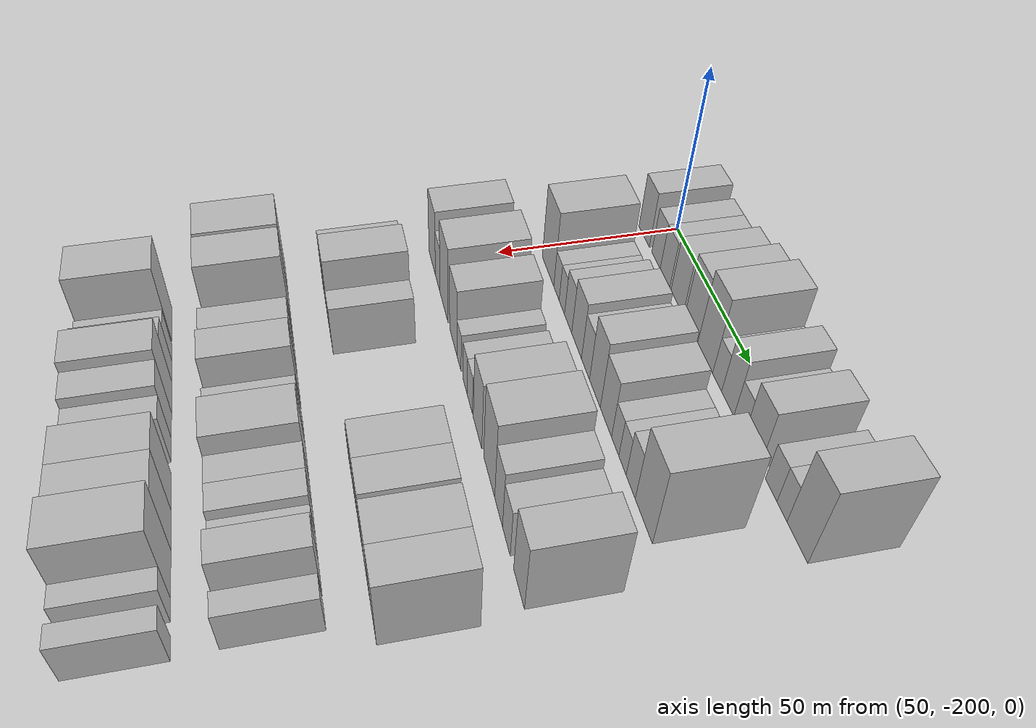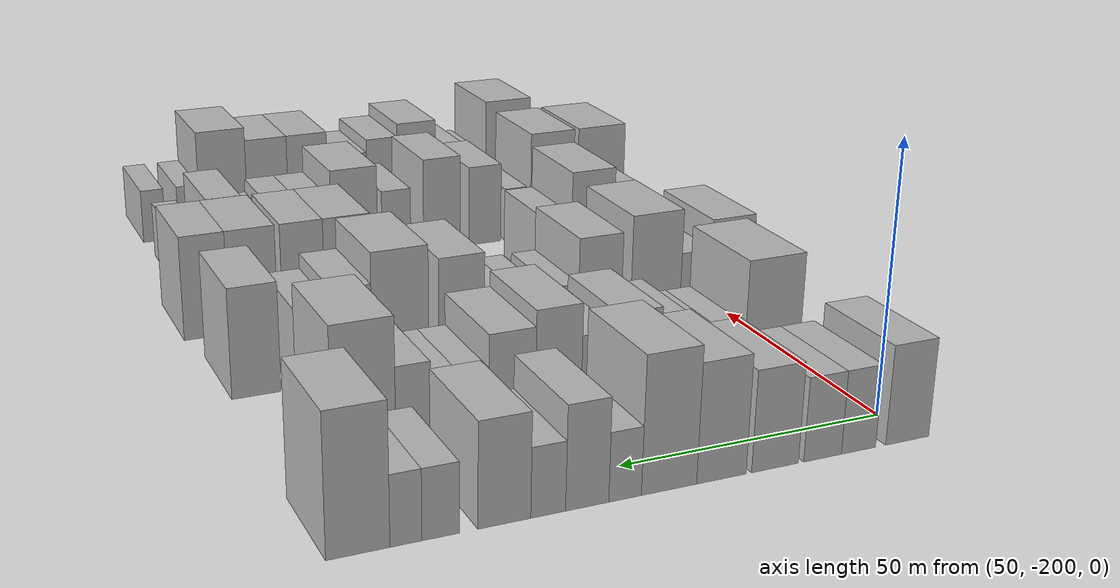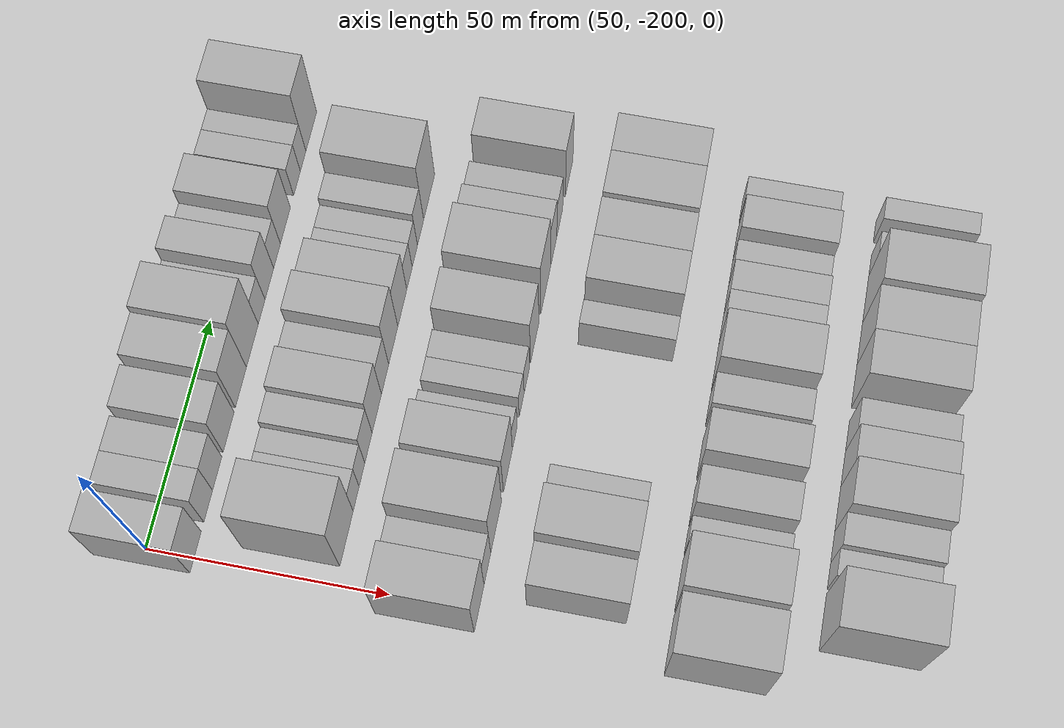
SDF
<sdf version="1.6">
 <world name="default">
  <model name="building_36">
   <static>1</static>
   <pose>50.0000 -198.7838 0 0.000000 0.000000 0.000000</pose>
   <link name="link">
    <pose>0 0 9.00 0 0 0</pose>
    <collision name="collision"><geometry><box><size>20.0000 8.6646 18.0000</size></box></geometry></collision>
    <visual name="visual">
     <cast_shadows>0</cast_shadows>
     <geometry><box><size>20.0000 8.6646 18.0000</size></box></geometry>
     <material>
      <script>
       <uri>model://HANNAS_wall/materials/scripts</uri>
       <uri>model://HANNAS_wall/materials/textures</uri>
       <name>vrc/HANNAS_wall</name>
      </script>
     </material>
    </visual>
   </link>
  </model>
  <model name="building_37">
   <static>1</static>
   <pose>50.0000 -189.0861 0 0.000000 0.000000 0.000000</pose>
   <link name="link">
    <pose>0 0 7.50 0 0 0</pose>
    <collision name="collision"><geometry><box><size>20.0000 6.7308 15.0000</size></box></geometry></collision>
    <visual name="visual">
     <cast_shadows>0</cast_shadows>
     <geometry><box><size>20.0000 6.7308 15.0000</size></box></geometry>
     <material>
      <script>
       <uri>model://HANNAS_wall/materials/scripts</uri>
       <uri>model://HANNAS_wall/materials/textures</uri>
       <name>vrc/HANNAS_wall</name>
      </script>
     </material>
    </visual>
   </link>
  </model>
  <model name="building_38">
   <static>1</static>
   <pose>50.0000 -182.0911 0 0.000000 0.000000 0.000000</pose>
   <link name="link">
    <pose>0 0 7.50 0 0 0</pose>
    <collision name="collision"><geometry><box><size>20.0000 7.2593 15.0000</size></box></geometry></collision>
    <visual name="visual">
     <cast_shadows>0</cast_shadows>
     <geometry><box><size>20.0000 7.2593 15.0000</size></box></geometry>
     <material>
      <script>
       <uri>model://HANNAS_wall/materials/scripts</uri>
       <uri>model://HANNAS_wall/materials/textures</uri>
       <name>vrc/HANNAS_wall</name>
      </script>
     </material>
    </visual>
   </link>
  </model>
  <model name="building_39">
   <static>1</static>
   <pose>50.0000 -173.0492 0 0.000000 0.000000 0.000000</pose>
   <link name="link">
    <pose>0 0 9.00 0 0 0</pose>
    <collision name="collision"><geometry><box><size>20.0000 8.8244 18.0000</size></box></geometry></collision>
    <visual name="visual">
     <cast_shadows>0</cast_shadows>
     <geometry><box><size>20.0000 8.8244 18.0000</size></box></geometry>
     <material>
      <script>
       <uri>model://HANNAS_wall/materials/scripts</uri>
       <uri>model://HANNAS_wall/materials/textures</uri>
       <name>vrc/HANNAS_wall</name>
      </script>
     </material>
    </visual>
   </link>
  </model>
  <model name="building_40">
   <static>1</static>
   <pose>50.0000 -163.0983 0 0.000000 0.000000 0.000000</pose>
   <link name="link">
    <pose>0 0 10.50 0 0 0</pose>
    <collision name="collision"><geometry><box><size>20.0000 9.0775 21.0000</size></box></geometry></collision>
    <visual name="visual">
     <cast_shadows>0</cast_shadows>
     <geometry><box><size>20.0000 9.0775 21.0000</size></box></geometry>
     <material>
      <script>
       <uri>model://HANNAS_wall/materials/scripts</uri>
       <uri>model://HANNAS_wall/materials/textures</uri>
       <name>vrc/HANNAS_wall</name>
      </script>
     </material>
    </visual>
   </link>
  </model>
  <model name="building_41">
   <static>1</static>
   <pose>50.0000 -153.6239 0 0.000000 0.000000 0.000000</pose>
   <link name="link">
    <pose>0 0 12.00 0 0 0</pose>
    <collision name="collision"><geometry><box><size>20.0000 9.8713 24.0000</size></box></geometry></collision>
    <visual name="visual">
     <cast_shadows>0</cast_shadows>
     <geometry><box><size>20.0000 9.8713 24.0000</size></box></geometry>
     <material>
      <script>
       <uri>model://HANNAS_wall/materials/scripts</uri>
       <uri>model://HANNAS_wall/materials/textures</uri>
       <name>vrc/HANNAS_wall</name>
      </script>
     </material>
    </visual>
   </link>
  </model>
  <model name="building_42">
   <static>1</static>
   <pose>50.0000 -145.8374 0 0.000000 0.000000 0.000000</pose>
   <link name="link">
    <pose>0 0 6.00 0 0 0</pose>
    <collision name="collision"><geometry><box><size>20.0000 5.7016 12.0000</size></box></geometry></collision>
    <visual name="visual">
     <cast_shadows>0</cast_shadows>
     <geometry><box><size>20.0000 5.7016 12.0000</size></box></geometry>
     <material>
      <script>
       <uri>model://HANNAS_wall/materials/scripts</uri>
       <uri>model://HANNAS_wall/materials/textures</uri>
       <name>vrc/HANNAS_wall</name>
      </script>
     </material>
    </visual>
   </link>
  </model>
  <model name="building_43">
   <static>1</static>
   <pose>50.0000 -139.2914 0 0.000000 0.000000 0.000000</pose>
   <link name="link">
    <pose>0 0 9.00 0 0 0</pose>
    <collision name="collision"><geometry><box><size>20.0000 7.3903 18.0000</size></box></geometry></collision>
    <visual name="visual">
     <cast_shadows>0</cast_shadows>
     <geometry><box><size>20.0000 7.3903 18.0000</size></box></geometry>
     <material>
      <script>
       <uri>model://HANNAS_wall/materials/scripts</uri>
       <uri>model://HANNAS_wall/materials/textures</uri>
       <name>vrc/HANNAS_wall</name>
      </script>
     </material>
    </visual>
   </link>
  </model>
  <model name="building_44">
   <static>1</static>
   <pose>50.0000 -132.6653 0 0.000000 0.000000 0.000000</pose>
   <link name="link">
    <pose>0 0 6.00 0 0 0</pose>
    <collision name="collision"><geometry><box><size>20.0000 5.8619 12.0000</size></box></geometry></collision>
    <visual name="visual">
     <cast_shadows>0</cast_shadows>
     <geometry><box><size>20.0000 5.8619 12.0000</size></box></geometry>
     <material>
      <script>
       <uri>model://HANNAS_wall/materials/scripts</uri>
       <uri>model://HANNAS_wall/materials/textures</uri>
       <name>vrc/HANNAS_wall</name>
      </script>
     </material>
    </visual>
   </link>
  </model>
  <model name="building_45">
   <static>1</static>
   <pose>50.0000 -125.3735 0 0.000000 0.000000 0.000000</pose>
   <link name="link">
    <pose>0 0 9.00 0 0 0</pose>
    <collision name="collision"><geometry><box><size>20.0000 8.7218 18.0000</size></box></geometry></collision>
    <visual name="visual">
     <cast_shadows>0</cast_shadows>
     <geometry><box><size>20.0000 8.7218 18.0000</size></box></geometry>
     <material>
      <script>
       <uri>model://HANNAS_wall/materials/scripts</uri>
       <uri>model://HANNAS_wall/materials/textures</uri>
       <name>vrc/HANNAS_wall</name>
      </script>
     </material>
    </visual>
   </link>
  </model>
  <model name="building_46">
   <static>1</static>
   <pose>50.0000 -115.0211 0 0.000000 0.000000 0.000000</pose>
   <link name="link">
    <pose>0 0 6.00 0 0 0</pose>
    <collision name="collision"><geometry><box><size>20.0000 5.9830 12.0000</size></box></geometry></collision>
    <visual name="visual">
     <cast_shadows>0</cast_shadows>
     <geometry><box><size>20.0000 5.9830 12.0000</size></box></geometry>
     <material>
      <script>
       <uri>model://HANNAS_wall/materials/scripts</uri>
       <uri>model://HANNAS_wall/materials/textures</uri>
       <name>vrc/HANNAS_wall</name>
      </script>
     </material>
    </visual>
   </link>
  </model>
  <model name="building_47">
   <static>1</static>
   <pose>50.0000 -109.5095 0 0.000000 0.000000 0.000000</pose>
   <link name="link">
    <pose>0 0 6.00 0 0 0</pose>
    <collision name="collision"><geometry><box><size>20.0000 5.0402 12.0000</size></box></geometry></collision>
    <visual name="visual">
     <cast_shadows>0</cast_shadows>
     <geometry><box><size>20.0000 5.0402 12.0000</size></box></geometry>
     <material>
      <script>
       <uri>model://HANNAS_wall/materials/scripts</uri>
       <uri>model://HANNAS_wall/materials/textures</uri>
       <name>vrc/HANNAS_wall</name>
      </script>
     </material>
    </visual>
   </link>
  </model>
  <model name="building_48">
   <static>1</static>
   <pose>50.0000 -102.0302 0 0.000000 0.000000 0.000000</pose>
   <link name="link">
    <pose>0 0 12.00 0 0 0</pose>
    <collision name="collision"><geometry><box><size>20.0000 9.9185 24.0000</size></box></geometry></collision>
    <visual name="visual">
     <cast_shadows>0</cast_shadows>
     <geometry><box><size>20.0000 9.9185 24.0000</size></box></geometry>
     <material>
      <script>
       <uri>model://HANNAS_wall/materials/scripts</uri>
       <uri>model://HANNAS_wall/materials/textures</uri>
       <name>vrc/HANNAS_wall</name>
      </script>
     </material>
    </visual>
   </link>
  </model>
  <model name="building_146">
   <static>1</static>
   <pose>79.0000 -190.3811 0 0.000000 0.000000 0.000000</pose>
   <link name="link">
    <pose>0 0 12.00 0 0 0</pose>
    <collision name="collision"><geometry><box><size>20.0000 11.5935 24.0000</size></box></geometry></collision>
    <visual name="visual">
     <cast_shadows>0</cast_shadows>
     <geometry><box><size>20.0000 11.5935 24.0000</size></box></geometry>
     <material>
      <script>
       <uri>model://HANNAS_wall/materials/scripts</uri>
       <uri>model://HANNAS_wall/materials/textures</uri>
       <name>vrc/HANNAS_wall</name>
      </script>
     </material>
    </visual>
   </link>
  </model>
  <model name="building_147">
   <static>1</static>
   <pose>79.0000 -181.9676 0 0.000000 0.000000 0.000000</pose>
   <link name="link">
    <pose>0 0 6.00 0 0 0</pose>
    <collision name="collision"><geometry><box><size>20.0000 5.2334 12.0000</size></box></geometry></collision>
    <visual name="visual">
     <cast_shadows>0</cast_shadows>
     <geometry><box><size>20.0000 5.2334 12.0000</size></box></geometry>
     <material>
      <script>
       <uri>model://HANNAS_wall/materials/scripts</uri>
       <uri>model://HANNAS_wall/materials/textures</uri>
       <name>vrc/HANNAS_wall</name>
      </script>
     </material>
    </visual>
   </link>
  </model>
  <model name="building_148">
   <static>1</static>
   <pose>79.0000 -176.8046 0 0.000000 0.000000 0.000000</pose>
   <link name="link">
    <pose>0 0 6.00 0 0 0</pose>
    <collision name="collision"><geometry><box><size>20.0000 5.0927 12.0000</size></box></geometry></collision>
    <visual name="visual">
     <cast_shadows>0</cast_shadows>
     <geometry><box><size>20.0000 5.0927 12.0000</size></box></geometry>
     <material>
      <script>
       <uri>model://HANNAS_wall/materials/scripts</uri>
       <uri>model://HANNAS_wall/materials/textures</uri>
       <name>vrc/HANNAS_wall</name>
      </script>
     </material>
    </visual>
   </link>
  </model>
  <model name="building_149">
   <static>1</static>
   <pose>79.0000 -170.9656 0 0.000000 0.000000 0.000000</pose>
   <link name="link">
    <pose>0 0 7.50 0 0 0</pose>
    <collision name="collision"><geometry><box><size>20.0000 6.5852 15.0000</size></box></geometry></collision>
    <visual name="visual">
     <cast_shadows>0</cast_shadows>
     <geometry><box><size>20.0000 6.5852 15.0000</size></box></geometry>
     <material>
      <script>
       <uri>model://HANNAS_wall/materials/scripts</uri>
       <uri>model://HANNAS_wall/materials/textures</uri>
       <name>vrc/HANNAS_wall</name>
      </script>
     </material>
    </visual>
   </link>
  </model>
  <model name="building_150">
   <static>1</static>
   <pose>79.0000 -163.3822 0 0.000000 0.000000 0.000000</pose>
   <link name="link">
    <pose>0 0 9.00 0 0 0</pose>
    <collision name="collision"><geometry><box><size>20.0000 8.5816 18.0000</size></box></geometry></collision>
    <visual name="visual">
     <cast_shadows>0</cast_shadows>
     <geometry><box><size>20.0000 8.5816 18.0000</size></box></geometry>
     <material>
      <script>
       <uri>model://HANNAS_wall/materials/scripts</uri>
       <uri>model://HANNAS_wall/materials/textures</uri>
       <name>vrc/HANNAS_wall</name>
      </script>
     </material>
    </visual>
   </link>
  </model>
  <model name="building_151">
   <static>1</static>
   <pose>79.0000 -155.7158 0 0.000000 0.000000 0.000000</pose>
   <link name="link">
    <pose>0 0 7.50 0 0 0</pose>
    <collision name="collision"><geometry><box><size>20.0000 6.7514 15.0000</size></box></geometry></collision>
    <visual name="visual">
     <cast_shadows>0</cast_shadows>
     <geometry><box><size>20.0000 6.7514 15.0000</size></box></geometry>
     <material>
      <script>
       <uri>model://HANNAS_wall/materials/scripts</uri>
       <uri>model://HANNAS_wall/materials/textures</uri>
       <name>vrc/HANNAS_wall</name>
      </script>
     </material>
    </visual>
   </link>
  </model>
  <model name="building_152">
   <static>1</static>
   <pose>79.0000 -148.0096 0 0.000000 0.000000 0.000000</pose>
   <link name="link">
    <pose>0 0 10.50 0 0 0</pose>
    <collision name="collision"><geometry><box><size>20.0000 8.6610 21.0000</size></box></geometry></collision>
    <visual name="visual">
     <cast_shadows>0</cast_shadows>
     <geometry><box><size>20.0000 8.6610 21.0000</size></box></geometry>
     <material>
      <script>
       <uri>model://HANNAS_wall/materials/scripts</uri>
       <uri>model://HANNAS_wall/materials/textures</uri>
       <name>vrc/HANNAS_wall</name>
      </script>
     </material>
    </visual>
   </link>
  </model>
  <model name="building_153">
   <static>1</static>
   <pose>79.0000 -139.3828 0 0.000000 0.000000 0.000000</pose>
   <link name="link">
    <pose>0 0 9.00 0 0 0</pose>
    <collision name="collision"><geometry><box><size>20.0000 8.5925 18.0000</size></box></geometry></collision>
    <visual name="visual">
     <cast_shadows>0</cast_shadows>
     <geometry><box><size>20.0000 8.5925 18.0000</size></box></geometry>
     <material>
      <script>
       <uri>model://HANNAS_wall/materials/scripts</uri>
       <uri>model://HANNAS_wall/materials/textures</uri>
       <name>vrc/HANNAS_wall</name>
      </script>
     </material>
    </visual>
   </link>
  </model>
  <model name="building_154">
   <static>1</static>
   <pose>79.0000 -132.4367 0 0.000000 0.000000 0.000000</pose>
   <link name="link">
    <pose>0 0 6.00 0 0 0</pose>
    <collision name="collision"><geometry><box><size>20.0000 5.2998 12.0000</size></box></geometry></collision>
    <visual name="visual">
     <cast_shadows>0</cast_shadows>
     <geometry><box><size>20.0000 5.2998 12.0000</size></box></geometry>
     <material>
      <script>
       <uri>model://HANNAS_wall/materials/scripts</uri>
       <uri>model://HANNAS_wall/materials/textures</uri>
       <name>vrc/HANNAS_wall</name>
      </script>
     </material>
    </visual>
   </link>
  </model>
  <model name="building_155">
   <static>1</static>
   <pose>79.0000 -127.1890 0 0.000000 0.000000 0.000000</pose>
   <link name="link">
    <pose>0 0 6.00 0 0 0</pose>
    <collision name="collision"><geometry><box><size>20.0000 5.1957 12.0000</size></box></geometry></collision>
    <visual name="visual">
     <cast_shadows>0</cast_shadows>
     <geometry><box><size>20.0000 5.1957 12.0000</size></box></geometry>
     <material>
      <script>
       <uri>model://HANNAS_wall/materials/scripts</uri>
       <uri>model://HANNAS_wall/materials/textures</uri>
       <name>vrc/HANNAS_wall</name>
      </script>
     </material>
    </visual>
   </link>
  </model>
  <model name="building_156">
   <static>1</static>
   <pose>79.0000 -121.5085 0 0.000000 0.000000 0.000000</pose>
   <link name="link">
    <pose>0 0 7.50 0 0 0</pose>
    <collision name="collision"><geometry><box><size>20.0000 6.1654 15.0000</size></box></geometry></collision>
    <visual name="visual">
     <cast_shadows>0</cast_shadows>
     <geometry><box><size>20.0000 6.1654 15.0000</size></box></geometry>
     <material>
      <script>
       <uri>model://HANNAS_wall/materials/scripts</uri>
       <uri>model://HANNAS_wall/materials/textures</uri>
       <name>vrc/HANNAS_wall</name>
      </script>
     </material>
    </visual>
   </link>
  </model>
  <model name="building_157">
   <static>1</static>
   <pose>79.0000 -112.8808 0 0.000000 0.000000 0.000000</pose>
   <link name="link">
    <pose>0 0 12.00 0 0 0</pose>
    <collision name="collision"><geometry><box><size>20.0000 11.0898 24.0000</size></box></geometry></collision>
    <visual name="visual">
     <cast_shadows>0</cast_shadows>
     <geometry><box><size>20.0000 11.0898 24.0000</size></box></geometry>
     <material>
      <script>
       <uri>model://HANNAS_wall/materials/scripts</uri>
       <uri>model://HANNAS_wall/materials/textures</uri>
       <name>vrc/HANNAS_wall</name>
      </script>
     </material>
    </visual>
   </link>
  </model>
  <model name="building_259">
   <static>1</static>
   <pose>108.0000 -199.2536 0 0.000000 0.000000 0.000000</pose>
   <link name="link">
    <pose>0 0 10.50 0 0 0</pose>
    <collision name="collision"><geometry><box><size>20.0000 9.5827 21.0000</size></box></geometry></collision>
    <visual name="visual">
     <cast_shadows>0</cast_shadows>
     <geometry><box><size>20.0000 9.5827 21.0000</size></box></geometry>
     <material>
      <script>
       <uri>model://HANNAS_wall/materials/scripts</uri>
       <uri>model://HANNAS_wall/materials/textures</uri>
       <name>vrc/HANNAS_wall</name>
      </script>
     </material>
    </visual>
   </link>
  </model>
  <model name="building_260">
   <static>1</static>
   <pose>108.0000 -191.1654 0 0.000000 0.000000 0.000000</pose>
   <link name="link">
    <pose>0 0 7.50 0 0 0</pose>
    <collision name="collision"><geometry><box><size>20.0000 6.5938 15.0000</size></box></geometry></collision>
    <visual name="visual">
     <cast_shadows>0</cast_shadows>
     <geometry><box><size>20.0000 6.5938 15.0000</size></box></geometry>
     <material>
      <script>
       <uri>model://HANNAS_wall/materials/scripts</uri>
       <uri>model://HANNAS_wall/materials/textures</uri>
       <name>vrc/HANNAS_wall</name>
      </script>
     </material>
    </visual>
   </link>
  </model>
  <model name="building_261">
   <static>1</static>
   <pose>108.0000 -182.4324 0 0.000000 0.000000 0.000000</pose>
   <link name="link">
    <pose>0 0 12.00 0 0 0</pose>
    <collision name="collision"><geometry><box><size>20.0000 10.8723 24.0000</size></box></geometry></collision>
    <visual name="visual">
     <cast_shadows>0</cast_shadows>
     <geometry><box><size>20.0000 10.8723 24.0000</size></box></geometry>
     <material>
      <script>
       <uri>model://HANNAS_wall/materials/scripts</uri>
       <uri>model://HANNAS_wall/materials/textures</uri>
       <name>vrc/HANNAS_wall</name>
      </script>
     </material>
    </visual>
   </link>
  </model>
  <model name="building_262">
   <static>1</static>
   <pose>108.0000 -170.4144 0 0.000000 0.000000 0.000000</pose>
   <link name="link">
    <pose>0 0 10.50 0 0 0</pose>
    <collision name="collision"><geometry><box><size>20.0000 9.1637 21.0000</size></box></geometry></collision>
    <visual name="visual">
     <cast_shadows>0</cast_shadows>
     <geometry><box><size>20.0000 9.1637 21.0000</size></box></geometry>
     <material>
      <script>
       <uri>model://HANNAS_wall/materials/scripts</uri>
       <uri>model://HANNAS_wall/materials/textures</uri>
       <name>vrc/HANNAS_wall</name>
      </script>
     </material>
    </visual>
   </link>
  </model>
  <model name="building_263">
   <static>1</static>
   <pose>108.0000 -163.2435 0 0.000000 0.000000 0.000000</pose>
   <link name="link">
    <pose>0 0 6.00 0 0 0</pose>
    <collision name="collision"><geometry><box><size>20.0000 5.1781 12.0000</size></box></geometry></collision>
    <visual name="visual">
     <cast_shadows>0</cast_shadows>
     <geometry><box><size>20.0000 5.1781 12.0000</size></box></geometry>
     <material>
      <script>
       <uri>model://HANNAS_wall/materials/scripts</uri>
       <uri>model://HANNAS_wall/materials/textures</uri>
       <name>vrc/HANNAS_wall</name>
      </script>
     </material>
    </visual>
   </link>
  </model>
  <model name="building_264">
   <static>1</static>
   <pose>108.0000 -156.0507 0 0.000000 0.000000 0.000000</pose>
   <link name="link">
    <pose>0 0 6.00 0 0 0</pose>
    <collision name="collision"><geometry><box><size>20.0000 5.2074 12.0000</size></box></geometry></collision>
    <visual name="visual">
     <cast_shadows>0</cast_shadows>
     <geometry><box><size>20.0000 5.2074 12.0000</size></box></geometry>
     <material>
      <script>
       <uri>model://HANNAS_wall/materials/scripts</uri>
       <uri>model://HANNAS_wall/materials/textures</uri>
       <name>vrc/HANNAS_wall</name>
      </script>
     </material>
    </visual>
   </link>
  </model>
  <model name="building_265">
   <static>1</static>
   <pose>108.0000 -150.4723 0 0.000000 0.000000 0.000000</pose>
   <link name="link">
    <pose>0 0 6.00 0 0 0</pose>
    <collision name="collision"><geometry><box><size>20.0000 5.9494 12.0000</size></box></geometry></collision>
    <visual name="visual">
     <cast_shadows>0</cast_shadows>
     <geometry><box><size>20.0000 5.9494 12.0000</size></box></geometry>
     <material>
      <script>
       <uri>model://HANNAS_wall/materials/scripts</uri>
       <uri>model://HANNAS_wall/materials/textures</uri>
       <name>vrc/HANNAS_wall</name>
      </script>
     </material>
    </visual>
   </link>
  </model>
  <model name="building_266">
   <static>1</static>
   <pose>108.0000 -141.9452 0 0.000000 0.000000 0.000000</pose>
   <link name="link">
    <pose>0 0 10.50 0 0 0</pose>
    <collision name="collision"><geometry><box><size>20.0000 9.1048 21.0000</size></box></geometry></collision>
    <visual name="visual">
     <cast_shadows>0</cast_shadows>
     <geometry><box><size>20.0000 9.1048 21.0000</size></box></geometry>
     <material>
      <script>
       <uri>model://HANNAS_wall/materials/scripts</uri>
       <uri>model://HANNAS_wall/materials/textures</uri>
       <name>vrc/HANNAS_wall</name>
      </script>
     </material>
    </visual>
   </link>
  </model>
  <model name="building_267">
   <static>1</static>
   <pose>108.0000 -129.8903 0 0.000000 0.000000 0.000000</pose>
   <link name="link">
    <pose>0 0 12.00 0 0 0</pose>
    <collision name="collision"><geometry><box><size>20.0000 11.0051 24.0000</size></box></geometry></collision>
    <visual name="visual">
     <cast_shadows>0</cast_shadows>
     <geometry><box><size>20.0000 11.0051 24.0000</size></box></geometry>
     <material>
      <script>
       <uri>model://HANNAS_wall/materials/scripts</uri>
       <uri>model://HANNAS_wall/materials/textures</uri>
       <name>vrc/HANNAS_wall</name>
      </script>
     </material>
    </visual>
   </link>
  </model>
  <model name="building_268">
   <static>1</static>
   <pose>108.0000 -120.7259 0 0.000000 0.000000 0.000000</pose>
   <link name="link">
    <pose>0 0 9.00 0 0 0</pose>
    <collision name="collision"><geometry><box><size>20.0000 7.3238 18.0000</size></box></geometry></collision>
    <visual name="visual">
     <cast_shadows>0</cast_shadows>
     <geometry><box><size>20.0000 7.3238 18.0000</size></box></geometry>
     <material>
      <script>
       <uri>model://HANNAS_wall/materials/scripts</uri>
       <uri>model://HANNAS_wall/materials/textures</uri>
       <name>vrc/HANNAS_wall</name>
      </script>
     </material>
    </visual>
   </link>
  </model>
  <model name="building_269">
   <static>1</static>
   <pose>108.0000 -113.6109 0 0.000000 0.000000 0.000000</pose>
   <link name="link">
    <pose>0 0 7.50 0 0 0</pose>
    <collision name="collision"><geometry><box><size>20.0000 6.9062 15.0000</size></box></geometry></collision>
    <visual name="visual">
     <cast_shadows>0</cast_shadows>
     <geometry><box><size>20.0000 6.9062 15.0000</size></box></geometry>
     <material>
      <script>
       <uri>model://HANNAS_wall/materials/scripts</uri>
       <uri>model://HANNAS_wall/materials/textures</uri>
       <name>vrc/HANNAS_wall</name>
      </script>
     </material>
    </visual>
   </link>
  </model>
  <model name="building_270">
   <static>1</static>
   <pose>108.0000 -102.6590 0 0.000000 0.000000 0.000000</pose>
   <link name="link">
    <pose>0 0 10.50 0 0 0</pose>
    <collision name="collision"><geometry><box><size>20.0000 8.9976 21.0000</size></box></geometry></collision>
    <visual name="visual">
     <cast_shadows>0</cast_shadows>
     <geometry><box><size>20.0000 8.9976 21.0000</size></box></geometry>
     <material>
      <script>
       <uri>model://HANNAS_wall/materials/scripts</uri>
       <uri>model://HANNAS_wall/materials/textures</uri>
       <name>vrc/HANNAS_wall</name>
      </script>
     </material>
    </visual>
   </link>
  </model>
  <model name="building_376">
   <static>1</static>
   <pose>137.0000 -192.4479 0 0.000000 0.000000 0.000000</pose>
   <link name="link">
    <pose>0 0 9.00 0 0 0</pose>
    <collision name="collision"><geometry><box><size>20.0000 8.5877 18.0000</size></box></geometry></collision>
    <visual name="visual">
     <cast_shadows>0</cast_shadows>
     <geometry><box><size>20.0000 8.5877 18.0000</size></box></geometry>
     <material>
      <script>
       <uri>model://HANNAS_wall/materials/scripts</uri>
       <uri>model://HANNAS_wall/materials/textures</uri>
       <name>vrc/HANNAS_wall</name>
      </script>
     </material>
    </visual>
   </link>
  </model>
  <model name="building_377">
   <static>1</static>
   <pose>137.0000 -183.2180 0 0.000000 0.000000 0.000000</pose>
   <link name="link">
    <pose>0 0 12.00 0 0 0</pose>
    <collision name="collision"><geometry><box><size>20.0000 9.8721 24.0000</size></box></geometry></collision>
    <visual name="visual">
     <cast_shadows>0</cast_shadows>
     <geometry><box><size>20.0000 9.8721 24.0000</size></box></geometry>
     <material>
      <script>
       <uri>model://HANNAS_wall/materials/scripts</uri>
       <uri>model://HANNAS_wall/materials/textures</uri>
       <name>vrc/HANNAS_wall</name>
      </script>
     </material>
    </visual>
   </link>
  </model>
  <model name="building_378">
   <static>1</static>
   <pose>137.0000 -175.0483 0 0.000000 0.000000 0.000000</pose>
   <link name="link">
    <pose>0 0 7.50 0 0 0</pose>
    <collision name="collision"><geometry><box><size>20.0000 6.4673 15.0000</size></box></geometry></collision>
    <visual name="visual">
     <cast_shadows>0</cast_shadows>
     <geometry><box><size>20.0000 6.4673 15.0000</size></box></geometry>
     <material>
      <script>
       <uri>model://HANNAS_wall/materials/scripts</uri>
       <uri>model://HANNAS_wall/materials/textures</uri>
       <name>vrc/HANNAS_wall</name>
      </script>
     </material>
    </visual>
   </link>
  </model>
  <model name="building_379">
   <static>1</static>
   <pose>137.0000 -137.8472 0 0.000000 0.000000 0.000000</pose>
   <link name="link">
    <pose>0 0 6.00 0 0 0</pose>
    <collision name="collision"><geometry><box><size>20.0000 5.3116 12.0000</size></box></geometry></collision>
    <visual name="visual">
     <cast_shadows>0</cast_shadows>
     <geometry><box><size>20.0000 5.3116 12.0000</size></box></geometry>
     <material>
      <script>
       <uri>model://HANNAS_wall/materials/scripts</uri>
       <uri>model://HANNAS_wall/materials/textures</uri>
       <name>vrc/HANNAS_wall</name>
      </script>
     </material>
    </visual>
   </link>
  </model>
  <model name="building_380">
   <static>1</static>
   <pose>137.0000 -129.3893 0 0.000000 0.000000 0.000000</pose>
   <link name="link">
    <pose>0 0 10.50 0 0 0</pose>
    <collision name="collision"><geometry><box><size>20.0000 9.6042 21.0000</size></box></geometry></collision>
    <visual name="visual">
     <cast_shadows>0</cast_shadows>
     <geometry><box><size>20.0000 9.6042 21.0000</size></box></geometry>
     <material>
      <script>
       <uri>model://HANNAS_wall/materials/scripts</uri>
       <uri>model://HANNAS_wall/materials/textures</uri>
       <name>vrc/HANNAS_wall</name>
      </script>
     </material>
    </visual>
   </link>
  </model>
  <model name="building_381">
   <static>1</static>
   <pose>137.0000 -120.2629 0 0.000000 0.000000 0.000000</pose>
   <link name="link">
    <pose>0 0 10.50 0 0 0</pose>
    <collision name="collision"><geometry><box><size>20.0000 8.6487 21.0000</size></box></geometry></collision>
    <visual name="visual">
     <cast_shadows>0</cast_shadows>
     <geometry><box><size>20.0000 8.6487 21.0000</size></box></geometry>
     <material>
      <script>
       <uri>model://HANNAS_wall/materials/scripts</uri>
       <uri>model://HANNAS_wall/materials/textures</uri>
       <name>vrc/HANNAS_wall</name>
      </script>
     </material>
    </visual>
   </link>
  </model>
  <model name="building_382">
   <static>1</static>
   <pose>137.0000 -110.0245 0 0.000000 0.000000 0.000000</pose>
   <link name="link">
    <pose>0 0 10.50 0 0 0</pose>
    <collision name="collision"><geometry><box><size>20.0000 9.8280 21.0000</size></box></geometry></collision>
    <visual name="visual">
     <cast_shadows>0</cast_shadows>
     <geometry><box><size>20.0000 9.8280 21.0000</size></box></geometry>
     <material>
      <script>
       <uri>model://HANNAS_wall/materials/scripts</uri>
       <uri>model://HANNAS_wall/materials/textures</uri>
       <name>vrc/HANNAS_wall</name>
      </script>
     </material>
    </visual>
   </link>
  </model>
  <model name="building_383">
   <static>1</static>
   <pose>137.0000 -100.7225 0 0.000000 0.000000 0.000000</pose>
   <link name="link">
    <pose>0 0 10.50 0 0 0</pose>
    <collision name="collision"><geometry><box><size>20.0000 8.7761 21.0000</size></box></geometry></collision>
    <visual name="visual">
     <cast_shadows>0</cast_shadows>
     <geometry><box><size>20.0000 8.7761 21.0000</size></box></geometry>
     <material>
      <script>
       <uri>model://HANNAS_wall/materials/scripts</uri>
       <uri>model://HANNAS_wall/materials/textures</uri>
       <name>vrc/HANNAS_wall</name>
      </script>
     </material>
    </visual>
   </link>
  </model>
  <model name="building_487">
   <static>1</static>
   <pose>166.0000 -199.5766 0 0.000000 0.000000 0.000000</pose>
   <link name="link">
    <pose>0 0 12.00 0 0 0</pose>
    <collision name="collision"><geometry><box><size>20.0000 11.6516 24.0000</size></box></geometry></collision>
    <visual name="visual">
     <cast_shadows>0</cast_shadows>
     <geometry><box><size>20.0000 11.6516 24.0000</size></box></geometry>
     <material>
      <script>
       <uri>model://HANNAS_wall/materials/scripts</uri>
       <uri>model://HANNAS_wall/materials/textures</uri>
       <name>vrc/HANNAS_wall</name>
      </script>
     </material>
    </visual>
   </link>
  </model>
  <model name="building_488">
   <static>1</static>
   <pose>166.0000 -187.4387 0 0.000000 0.000000 0.000000</pose>
   <link name="link">
    <pose>0 0 12.00 0 0 0</pose>
    <collision name="collision"><geometry><box><size>20.0000 10.6242 24.0000</size></box></geometry></collision>
    <visual name="visual">
     <cast_shadows>0</cast_shadows>
     <geometry><box><size>20.0000 10.6242 24.0000</size></box></geometry>
     <material>
      <script>
       <uri>model://HANNAS_wall/materials/scripts</uri>
       <uri>model://HANNAS_wall/materials/textures</uri>
       <name>vrc/HANNAS_wall</name>
      </script>
     </material>
    </visual>
   </link>
  </model>
  <model name="building_489">
   <static>1</static>
   <pose>166.0000 -178.5136 0 0.000000 0.000000 0.000000</pose>
   <link name="link">
    <pose>0 0 6.00 0 0 0</pose>
    <collision name="collision"><geometry><box><size>20.0000 5.2261 12.0000</size></box></geometry></collision>
    <visual name="visual">
     <cast_shadows>0</cast_shadows>
     <geometry><box><size>20.0000 5.2261 12.0000</size></box></geometry>
     <material>
      <script>
       <uri>model://HANNAS_wall/materials/scripts</uri>
       <uri>model://HANNAS_wall/materials/textures</uri>
       <name>vrc/HANNAS_wall</name>
      </script>
     </material>
    </visual>
   </link>
  </model>
  <model name="building_490">
   <static>1</static>
   <pose>166.0000 -171.0269 0 0.000000 0.000000 0.000000</pose>
   <link name="link">
    <pose>0 0 9.00 0 0 0</pose>
    <collision name="collision"><geometry><box><size>20.0000 7.7474 18.0000</size></box></geometry></collision>
    <visual name="visual">
     <cast_shadows>0</cast_shadows>
     <geometry><box><size>20.0000 7.7474 18.0000</size></box></geometry>
     <material>
      <script>
       <uri>model://HANNAS_wall/materials/scripts</uri>
       <uri>model://HANNAS_wall/materials/textures</uri>
       <name>vrc/HANNAS_wall</name>
      </script>
     </material>
    </visual>
   </link>
  </model>
  <model name="building_491">
   <static>1</static>
   <pose>166.0000 -160.7839 0 0.000000 0.000000 0.000000</pose>
   <link name="link">
    <pose>0 0 10.50 0 0 0</pose>
    <collision name="collision"><geometry><box><size>20.0000 8.7385 21.0000</size></box></geometry></collision>
    <visual name="visual">
     <cast_shadows>0</cast_shadows>
     <geometry><box><size>20.0000 8.7385 21.0000</size></box></geometry>
     <material>
      <script>
       <uri>model://HANNAS_wall/materials/scripts</uri>
       <uri>model://HANNAS_wall/materials/textures</uri>
       <name>vrc/HANNAS_wall</name>
      </script>
     </material>
    </visual>
   </link>
  </model>
  <model name="building_492">
   <static>1</static>
   <pose>166.0000 -150.0946 0 0.000000 0.000000 0.000000</pose>
   <link name="link">
    <pose>0 0 7.50 0 0 0</pose>
    <collision name="collision"><geometry><box><size>20.0000 6.6401 15.0000</size></box></geometry></collision>
    <visual name="visual">
     <cast_shadows>0</cast_shadows>
     <geometry><box><size>20.0000 6.6401 15.0000</size></box></geometry>
     <material>
      <script>
       <uri>model://HANNAS_wall/materials/scripts</uri>
       <uri>model://HANNAS_wall/materials/textures</uri>
       <name>vrc/HANNAS_wall</name>
      </script>
     </material>
    </visual>
   </link>
  </model>
  <model name="building_493">
   <static>1</static>
   <pose>166.0000 -140.5374 0 0.000000 0.000000 0.000000</pose>
   <link name="link">
    <pose>0 0 10.50 0 0 0</pose>
    <collision name="collision"><geometry><box><size>20.0000 10.4743 21.0000</size></box></geometry></collision>
    <visual name="visual">
     <cast_shadows>0</cast_shadows>
     <geometry><box><size>20.0000 10.4743 21.0000</size></box></geometry>
     <material>
      <script>
       <uri>model://HANNAS_wall/materials/scripts</uri>
       <uri>model://HANNAS_wall/materials/textures</uri>
       <name>vrc/HANNAS_wall</name>
      </script>
     </material>
    </visual>
   </link>
  </model>
  <model name="building_494">
   <static>1</static>
   <pose>166.0000 -131.9075 0 0.000000 0.000000 0.000000</pose>
   <link name="link">
    <pose>0 0 7.50 0 0 0</pose>
    <collision name="collision"><geometry><box><size>20.0000 6.7856 15.0000</size></box></geometry></collision>
    <visual name="visual">
     <cast_shadows>0</cast_shadows>
     <geometry><box><size>20.0000 6.7856 15.0000</size></box></geometry>
     <material>
      <script>
       <uri>model://HANNAS_wall/materials/scripts</uri>
       <uri>model://HANNAS_wall/materials/textures</uri>
       <name>vrc/HANNAS_wall</name>
      </script>
     </material>
    </visual>
   </link>
  </model>
  <model name="building_495">
   <static>1</static>
   <pose>166.0000 -125.1832 0 0.000000 0.000000 0.000000</pose>
   <link name="link">
    <pose>0 0 7.50 0 0 0</pose>
    <collision name="collision"><geometry><box><size>20.0000 6.6630 15.0000</size></box></geometry></collision>
    <visual name="visual">
     <cast_shadows>0</cast_shadows>
     <geometry><box><size>20.0000 6.6630 15.0000</size></box></geometry>
     <material>
      <script>
       <uri>model://HANNAS_wall/materials/scripts</uri>
       <uri>model://HANNAS_wall/materials/textures</uri>
       <name>vrc/HANNAS_wall</name>
      </script>
     </material>
    </visual>
   </link>
  </model>
  <model name="building_496">
   <static>1</static>
   <pose>166.0000 -118.8574 0 0.000000 0.000000 0.000000</pose>
   <link name="link">
    <pose>0 0 6.00 0 0 0</pose>
    <collision name="collision"><geometry><box><size>20.0000 5.9886 12.0000</size></box></geometry></collision>
    <visual name="visual">
     <cast_shadows>0</cast_shadows>
     <geometry><box><size>20.0000 5.9886 12.0000</size></box></geometry>
     <material>
      <script>
       <uri>model://HANNAS_wall/materials/scripts</uri>
       <uri>model://HANNAS_wall/materials/textures</uri>
       <name>vrc/HANNAS_wall</name>
      </script>
     </material>
    </visual>
   </link>
  </model>
  <model name="building_497">
   <static>1</static>
   <pose>166.0000 -112.1315 0 0.000000 0.000000 0.000000</pose>
   <link name="link">
    <pose>0 0 9.00 0 0 0</pose>
    <collision name="collision"><geometry><box><size>20.0000 7.4630 18.0000</size></box></geometry></collision>
    <visual name="visual">
     <cast_shadows>0</cast_shadows>
     <geometry><box><size>20.0000 7.4630 18.0000</size></box></geometry>
     <material>
      <script>
       <uri>model://HANNAS_wall/materials/scripts</uri>
       <uri>model://HANNAS_wall/materials/textures</uri>
       <name>vrc/HANNAS_wall</name>
      </script>
     </material>
    </visual>
   </link>
  </model>
  <model name="building_498">
   <static>1</static>
   <pose>166.0000 -103.7409 0 0.000000 0.000000 0.000000</pose>
   <link name="link">
    <pose>0 0 6.00 0 0 0</pose>
    <collision name="collision"><geometry><box><size>20.0000 5.3183 12.0000</size></box></geometry></collision>
    <visual name="visual">
     <cast_shadows>0</cast_shadows>
     <geometry><box><size>20.0000 5.3183 12.0000</size></box></geometry>
     <material>
      <script>
       <uri>model://HANNAS_wall/materials/scripts</uri>
       <uri>model://HANNAS_wall/materials/textures</uri>
       <name>vrc/HANNAS_wall</name>
      </script>
     </material>
    </visual>
   </link>
  </model>
  <model name="building_602">
   <static>1</static>
   <pose>195.0000 -189.1990 0 0.000000 0.000000 0.000000</pose>
   <link name="link">
    <pose>0 0 12.00 0 0 0</pose>
    <collision name="collision"><geometry><box><size>20.0000 11.5408 24.0000</size></box></geometry></collision>
    <visual name="visual">
     <cast_shadows>0</cast_shadows>
     <geometry><box><size>20.0000 11.5408 24.0000</size></box></geometry>
     <material>
      <script>
       <uri>model://HANNAS_wall/materials/scripts</uri>
       <uri>model://HANNAS_wall/materials/textures</uri>
       <name>vrc/HANNAS_wall</name>
      </script>
     </material>
    </visual>
   </link>
  </model>
  <model name="building_603">
   <static>1</static>
   <pose>195.0000 -179.7333 0 0.000000 0.000000 0.000000</pose>
   <link name="link">
    <pose>0 0 6.00 0 0 0</pose>
    <collision name="collision"><geometry><box><size>20.0000 5.3904 12.0000</size></box></geometry></collision>
    <visual name="visual">
     <cast_shadows>0</cast_shadows>
     <geometry><box><size>20.0000 5.3904 12.0000</size></box></geometry>
     <material>
      <script>
       <uri>model://HANNAS_wall/materials/scripts</uri>
       <uri>model://HANNAS_wall/materials/textures</uri>
       <name>vrc/HANNAS_wall</name>
      </script>
     </material>
    </visual>
   </link>
  </model>
  <model name="building_604">
   <static>1</static>
   <pose>195.0000 -173.7624 0 0.000000 0.000000 0.000000</pose>
   <link name="link">
    <pose>0 0 7.50 0 0 0</pose>
    <collision name="collision"><geometry><box><size>20.0000 6.5515 15.0000</size></box></geometry></collision>
    <visual name="visual">
     <cast_shadows>0</cast_shadows>
     <geometry><box><size>20.0000 6.5515 15.0000</size></box></geometry>
     <material>
      <script>
       <uri>model://HANNAS_wall/materials/scripts</uri>
       <uri>model://HANNAS_wall/materials/textures</uri>
       <name>vrc/HANNAS_wall</name>
      </script>
     </material>
    </visual>
   </link>
  </model>
  <model name="building_605">
   <static>1</static>
   <pose>195.0000 -165.7023 0 0.000000 0.000000 0.000000</pose>
   <link name="link">
    <pose>0 0 10.50 0 0 0</pose>
    <collision name="collision"><geometry><box><size>20.0000 9.5687 21.0000</size></box></geometry></collision>
    <visual name="visual">
     <cast_shadows>0</cast_shadows>
     <geometry><box><size>20.0000 9.5687 21.0000</size></box></geometry>
     <material>
      <script>
       <uri>model://HANNAS_wall/materials/scripts</uri>
       <uri>model://HANNAS_wall/materials/textures</uri>
       <name>vrc/HANNAS_wall</name>
      </script>
     </material>
    </visual>
   </link>
  </model>
  <model name="building_606">
   <static>1</static>
   <pose>195.0000 -157.1192 0 0.000000 0.000000 0.000000</pose>
   <link name="link">
    <pose>0 0 9.00 0 0 0</pose>
    <collision name="collision"><geometry><box><size>20.0000 7.5973 18.0000</size></box></geometry></collision>
    <visual name="visual">
     <cast_shadows>0</cast_shadows>
     <geometry><box><size>20.0000 7.5973 18.0000</size></box></geometry>
     <material>
      <script>
       <uri>model://HANNAS_wall/materials/scripts</uri>
       <uri>model://HANNAS_wall/materials/textures</uri>
       <name>vrc/HANNAS_wall</name>
      </script>
     </material>
    </visual>
   </link>
  </model>
  <model name="building_607">
   <static>1</static>
   <pose>195.0000 -150.0114 0 0.000000 0.000000 0.000000</pose>
   <link name="link">
    <pose>0 0 7.50 0 0 0</pose>
    <collision name="collision"><geometry><box><size>20.0000 6.6184 15.0000</size></box></geometry></collision>
    <visual name="visual">
     <cast_shadows>0</cast_shadows>
     <geometry><box><size>20.0000 6.6184 15.0000</size></box></geometry>
     <material>
      <script>
       <uri>model://HANNAS_wall/materials/scripts</uri>
       <uri>model://HANNAS_wall/materials/textures</uri>
       <name>vrc/HANNAS_wall</name>
      </script>
     </material>
    </visual>
   </link>
  </model>
  <model name="building_608">
   <static>1</static>
   <pose>195.0000 -138.9562 0 0.000000 0.000000 0.000000</pose>
   <link name="link">
    <pose>0 0 10.50 0 0 0</pose>
    <collision name="collision"><geometry><box><size>20.0000 9.4919 21.0000</size></box></geometry></collision>
    <visual name="visual">
     <cast_shadows>0</cast_shadows>
     <geometry><box><size>20.0000 9.4919 21.0000</size></box></geometry>
     <material>
      <script>
       <uri>model://HANNAS_wall/materials/scripts</uri>
       <uri>model://HANNAS_wall/materials/textures</uri>
       <name>vrc/HANNAS_wall</name>
      </script>
     </material>
    </visual>
   </link>
  </model>
  <model name="building_609">
   <static>1</static>
   <pose>195.0000 -129.3771 0 0.000000 0.000000 0.000000</pose>
   <link name="link">
    <pose>0 0 10.50 0 0 0</pose>
    <collision name="collision"><geometry><box><size>20.0000 9.6664 21.0000</size></box></geometry></collision>
    <visual name="visual">
     <cast_shadows>0</cast_shadows>
     <geometry><box><size>20.0000 9.6664 21.0000</size></box></geometry>
     <material>
      <script>
       <uri>model://HANNAS_wall/materials/scripts</uri>
       <uri>model://HANNAS_wall/materials/textures</uri>
       <name>vrc/HANNAS_wall</name>
      </script>
     </material>
    </visual>
   </link>
  </model>
  <model name="building_610">
   <static>1</static>
   <pose>195.0000 -119.0124 0 0.000000 0.000000 0.000000</pose>
   <link name="link">
    <pose>0 0 12.00 0 0 0</pose>
    <collision name="collision"><geometry><box><size>20.0000 11.0631 24.0000</size></box></geometry></collision>
    <visual name="visual">
     <cast_shadows>0</cast_shadows>
     <geometry><box><size>20.0000 11.0631 24.0000</size></box></geometry>
     <material>
      <script>
       <uri>model://HANNAS_wall/materials/scripts</uri>
       <uri>model://HANNAS_wall/materials/textures</uri>
       <name>vrc/HANNAS_wall</name>
      </script>
     </material>
    </visual>
   </link>
  </model>
  <model name="building_611">
   <static>1</static>
   <pose>195.0000 -110.9747 0 0.000000 0.000000 0.000000</pose>
   <link name="link">
    <pose>0 0 6.00 0 0 0</pose>
    <collision name="collision"><geometry><box><size>20.0000 5.0121 12.0000</size></box></geometry></collision>
    <visual name="visual">
     <cast_shadows>0</cast_shadows>
     <geometry><box><size>20.0000 5.0121 12.0000</size></box></geometry>
     <material>
      <script>
       <uri>model://HANNAS_wall/materials/scripts</uri>
       <uri>model://HANNAS_wall/materials/textures</uri>
       <name>vrc/HANNAS_wall</name>
      </script>
     </material>
    </visual>
   </link>
  </model>
  <model name="building_612">
   <static>1</static>
   <pose>195.0000 -102.9707 0 0.000000 0.000000 0.000000</pose>
   <link name="link">
    <pose>0 0 6.00 0 0 0</pose>
    <collision name="collision"><geometry><box><size>20.0000 4.9960 12.0000</size></box></geometry></collision>
    <visual name="visual">
     <cast_shadows>0</cast_shadows>
     <geometry><box><size>20.0000 4.9960 12.0000</size></box></geometry>
     <material>
      <script>
       <uri>model://HANNAS_wall/materials/scripts</uri>
       <uri>model://HANNAS_wall/materials/textures</uri>
       <name>vrc/HANNAS_wall</name>
      </script>
     </material>
    </visual>
   </link>
  </model>
 </world>
</sdf>
